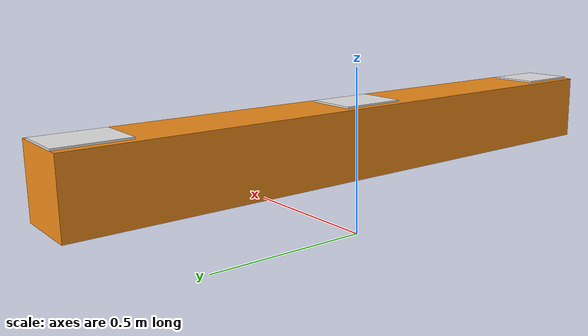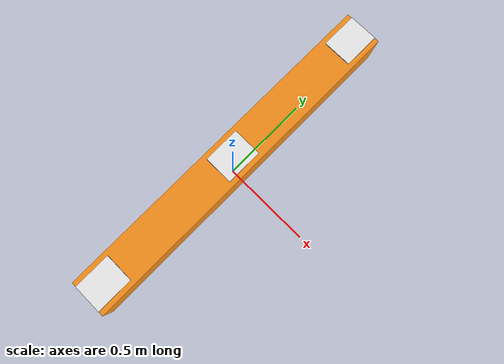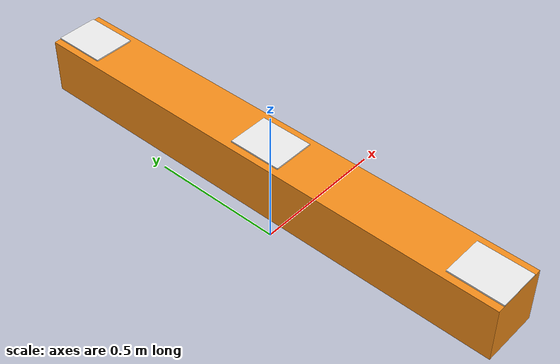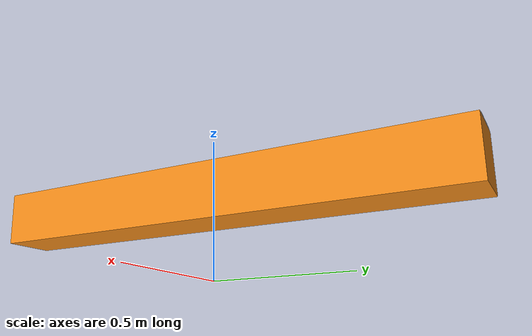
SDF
<?xml version="1.0" ?>
<sdf version="1.5">
  <model name="mbzirc_box_orange">
    <pose>0 0 0.3 0 0 0</pose>
    <link name="link">
      <collision name="collision">
        <geometry>
          <box>
            <size>0.2 1.8 0.2</size>
          </box>
        </geometry>
      </collision>
      <visual name="visual">
        <geometry>
          <box>
            <size>0.2 1.8 0.2</size>
          </box>
        </geometry>
        <material>
          <script>
            <name>Gazebo/Orange</name>
            <uri>file://media/materials/scripts/gazebo.material</uri>
          </script>
        </material>
      </visual>
      <collision name="collision_top">
        <pose>0 0 0.1 0 0 0</pose>
        <geometry>
          <box>
            <size>0.15 0.19 0.01</size>
          </box>
        </geometry>
      </collision>
      <visual name="visual_top">
        <pose>0 0 0.1 0 0 0</pose>
        <geometry>
          <box>
            <size>0.15 0.19 0.01</size>
          </box>
        </geometry>
        <material>
          <script>
            <name>Gazebo/White</name>
            <uri>file://media/materials/scripts/gazebo.material</uri>
          </script>
        </material>
      </visual>
      <collision name="collision_top_left">
        <pose>0 0.805 0.1 0 0 0</pose>
        <geometry>
          <box>
            <size>0.15 0.19 0.01</size>
          </box>
        </geometry>
      </collision>
      <visual name="visual_top_left">
        <pose>0 0.805 0.1 0 0 0</pose>
        <geometry>
          <box>
            <size>0.15 0.19 0.01</size>
          </box>
        </geometry>
        <material>
          <script>
            <name>Gazebo/White</name>
            <uri>file://media/materials/scripts/gazebo.material</uri>
          </script>
        </material>
      </visual>
      <collision name="collision_top_right">
        <pose>0 -0.805 0.1 0 0 0</pose>
        <geometry>
          <box>
            <size>0.15 0.19 0.01</size>
          </box>
        </geometry>
      </collision>
      <visual name="visual_top_right">
        <pose>0 -0.805 0.1 0 0 0</pose>
        <geometry>
          <box>
            <size>0.15 0.19 0.01</size>
          </box>
        </geometry>
        <material>
          <script>
            <name>Gazebo/White</name>
            <uri>file://media/materials/scripts/gazebo.material</uri>
          </script>
        </material>
      </visual>
    </link>
  </model>
</sdf>
